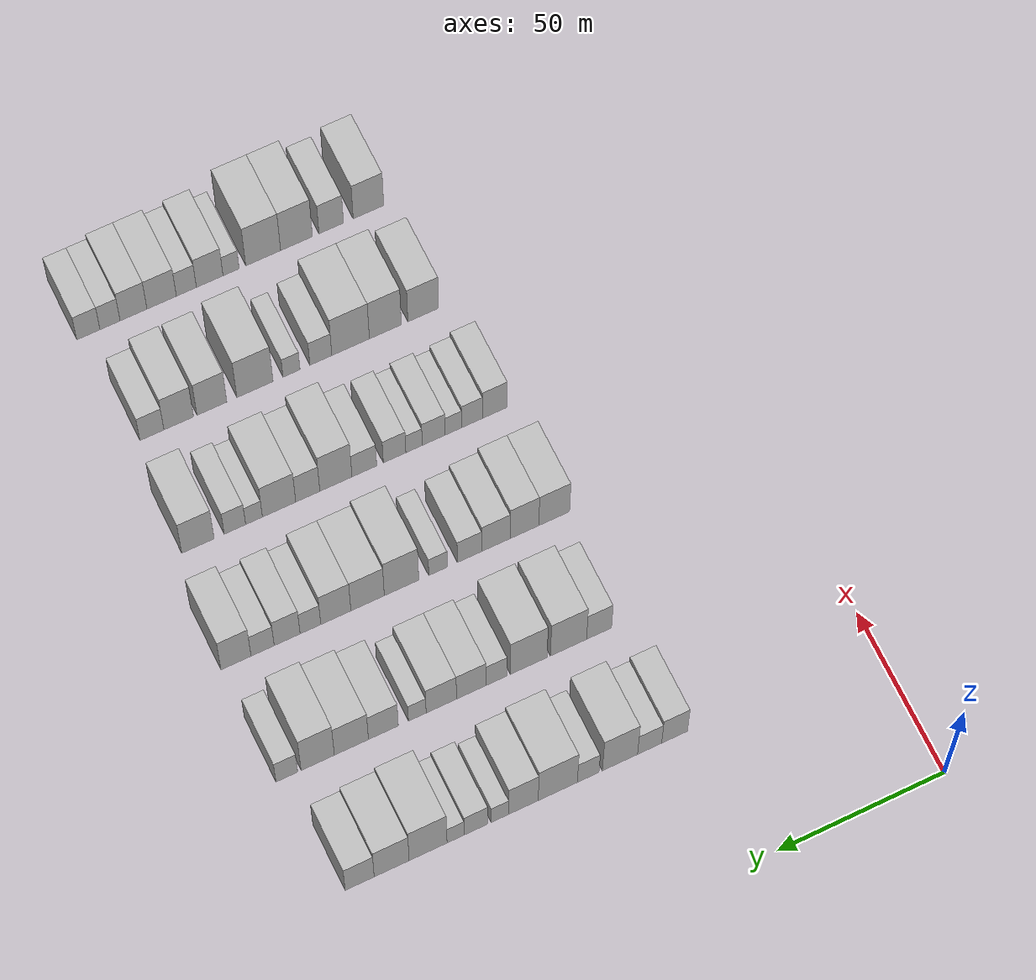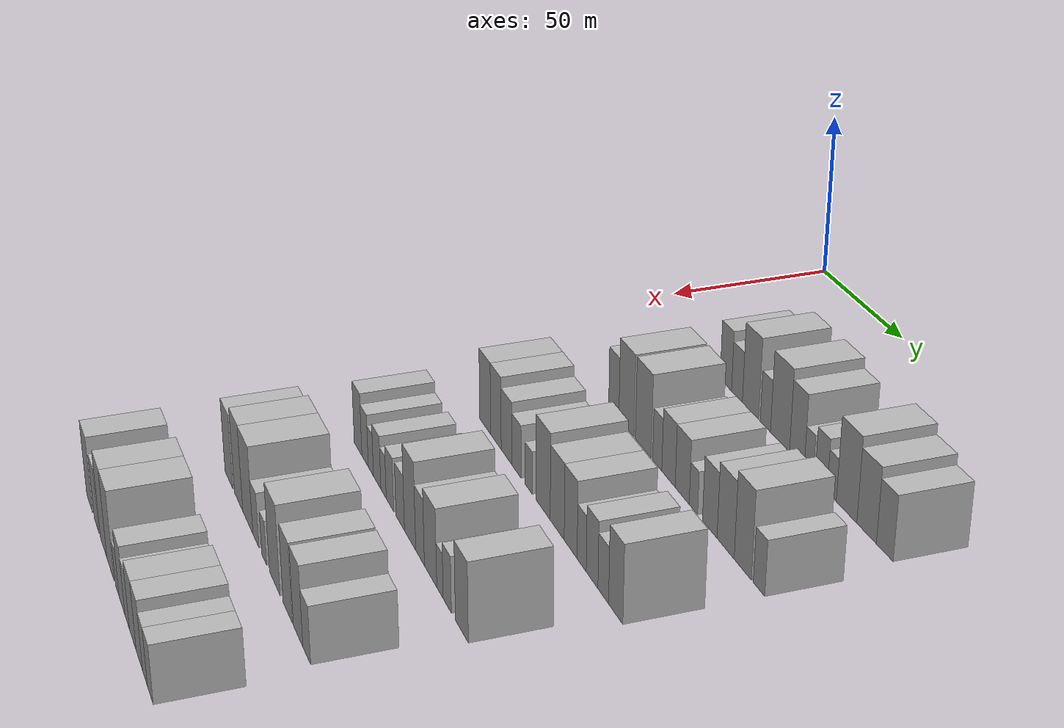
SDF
<sdf version="1.6">
 <world name="default">
  <model name="building_76">
   <static>1</static>
   <pose>50.0000 60.2573 0 0.000000 0.000000 0.000000</pose>
   <link name="link">
    <pose>0 0 9.00 0 0 0</pose>
    <collision name="collision"><geometry><box><size>20.0000 7.6862 18.0000</size></box></geometry></collision>
    <visual name="visual">
     <cast_shadows>0</cast_shadows>
     <geometry><box><size>20.0000 7.6862 18.0000</size></box></geometry>
     <material>
      <script>
       <uri>model://HANNAS_wall/materials/scripts</uri>
       <uri>model://HANNAS_wall/materials/textures</uri>
       <name>vrc/HANNAS_wall</name>
      </script>
     </material>
    </visual>
   </link>
  </model>
  <model name="building_77">
   <static>1</static>
   <pose>50.0000 67.6874 0 0.000000 0.000000 0.000000</pose>
   <link name="link">
    <pose>0 0 7.50 0 0 0</pose>
    <collision name="collision"><geometry><box><size>20.0000 7.1740 15.0000</size></box></geometry></collision>
    <visual name="visual">
     <cast_shadows>0</cast_shadows>
     <geometry><box><size>20.0000 7.1740 15.0000</size></box></geometry>
     <material>
      <script>
       <uri>model://HANNAS_wall/materials/scripts</uri>
       <uri>model://HANNAS_wall/materials/textures</uri>
       <name>vrc/HANNAS_wall</name>
      </script>
     </material>
    </visual>
   </link>
  </model>
  <model name="building_78">
   <static>1</static>
   <pose>50.0000 76.4942 0 0.000000 0.000000 0.000000</pose>
   <link name="link">
    <pose>0 0 12.00 0 0 0</pose>
    <collision name="collision"><geometry><box><size>20.0000 10.4397 24.0000</size></box></geometry></collision>
    <visual name="visual">
     <cast_shadows>0</cast_shadows>
     <geometry><box><size>20.0000 10.4397 24.0000</size></box></geometry>
     <material>
      <script>
       <uri>model://HANNAS_wall/materials/scripts</uri>
       <uri>model://HANNAS_wall/materials/textures</uri>
       <name>vrc/HANNAS_wall</name>
      </script>
     </material>
    </visual>
   </link>
  </model>
  <model name="building_79">
   <static>1</static>
   <pose>50.0000 85.9219 0 0.000000 0.000000 0.000000</pose>
   <link name="link">
    <pose>0 0 7.50 0 0 0</pose>
    <collision name="collision"><geometry><box><size>20.0000 6.4157 15.0000</size></box></geometry></collision>
    <visual name="visual">
     <cast_shadows>0</cast_shadows>
     <geometry><box><size>20.0000 6.4157 15.0000</size></box></geometry>
     <material>
      <script>
       <uri>model://HANNAS_wall/materials/scripts</uri>
       <uri>model://HANNAS_wall/materials/textures</uri>
       <name>vrc/HANNAS_wall</name>
      </script>
     </material>
    </visual>
   </link>
  </model>
  <model name="building_80">
   <static>1</static>
   <pose>50.0000 94.9156 0 0.000000 0.000000 0.000000</pose>
   <link name="link">
    <pose>0 0 12.00 0 0 0</pose>
    <collision name="collision"><geometry><box><size>20.0000 11.5717 24.0000</size></box></geometry></collision>
    <visual name="visual">
     <cast_shadows>0</cast_shadows>
     <geometry><box><size>20.0000 11.5717 24.0000</size></box></geometry>
     <material>
      <script>
       <uri>model://HANNAS_wall/materials/scripts</uri>
       <uri>model://HANNAS_wall/materials/textures</uri>
       <name>vrc/HANNAS_wall</name>
      </script>
     </material>
    </visual>
   </link>
  </model>
  <model name="building_81">
   <static>1</static>
   <pose>50.0000 105.0639 0 0.000000 0.000000 0.000000</pose>
   <link name="link">
    <pose>0 0 10.50 0 0 0</pose>
    <collision name="collision"><geometry><box><size>20.0000 8.7250 21.0000</size></box></geometry></collision>
    <visual name="visual">
     <cast_shadows>0</cast_shadows>
     <geometry><box><size>20.0000 8.7250 21.0000</size></box></geometry>
     <material>
      <script>
       <uri>model://HANNAS_wall/materials/scripts</uri>
       <uri>model://HANNAS_wall/materials/textures</uri>
       <name>vrc/HANNAS_wall</name>
      </script>
     </material>
    </visual>
   </link>
  </model>
  <model name="building_82">
   <static>1</static>
   <pose>50.0000 111.9966 0 0.000000 0.000000 0.000000</pose>
   <link name="link">
    <pose>0 0 6.00 0 0 0</pose>
    <collision name="collision"><geometry><box><size>20.0000 5.1404 12.0000</size></box></geometry></collision>
    <visual name="visual">
     <cast_shadows>0</cast_shadows>
     <geometry><box><size>20.0000 5.1404 12.0000</size></box></geometry>
     <material>
      <script>
       <uri>model://HANNAS_wall/materials/scripts</uri>
       <uri>model://HANNAS_wall/materials/textures</uri>
       <name>vrc/HANNAS_wall</name>
      </script>
     </material>
    </visual>
   </link>
  </model>
  <model name="building_83">
   <static>1</static>
   <pose>50.0000 119.0110 0 0.000000 0.000000 0.000000</pose>
   <link name="link">
    <pose>0 0 7.50 0 0 0</pose>
    <collision name="collision"><geometry><box><size>20.0000 6.8884 15.0000</size></box></geometry></collision>
    <visual name="visual">
     <cast_shadows>0</cast_shadows>
     <geometry><box><size>20.0000 6.8884 15.0000</size></box></geometry>
     <material>
      <script>
       <uri>model://HANNAS_wall/materials/scripts</uri>
       <uri>model://HANNAS_wall/materials/textures</uri>
       <name>vrc/HANNAS_wall</name>
      </script>
     </material>
    </visual>
   </link>
  </model>
  <model name="building_84">
   <static>1</static>
   <pose>50.0000 124.9751 0 0.000000 0.000000 0.000000</pose>
   <link name="link">
    <pose>0 0 6.00 0 0 0</pose>
    <collision name="collision"><geometry><box><size>20.0000 5.0398 12.0000</size></box></geometry></collision>
    <visual name="visual">
     <cast_shadows>0</cast_shadows>
     <geometry><box><size>20.0000 5.0398 12.0000</size></box></geometry>
     <material>
      <script>
       <uri>model://HANNAS_wall/materials/scripts</uri>
       <uri>model://HANNAS_wall/materials/textures</uri>
       <name>vrc/HANNAS_wall</name>
      </script>
     </material>
    </visual>
   </link>
  </model>
  <model name="building_85">
   <static>1</static>
   <pose>50.0000 133.0307 0 0.000000 0.000000 0.000000</pose>
   <link name="link">
    <pose>0 0 12.00 0 0 0</pose>
    <collision name="collision"><geometry><box><size>20.0000 11.0714 24.0000</size></box></geometry></collision>
    <visual name="visual">
     <cast_shadows>0</cast_shadows>
     <geometry><box><size>20.0000 11.0714 24.0000</size></box></geometry>
     <material>
      <script>
       <uri>model://HANNAS_wall/materials/scripts</uri>
       <uri>model://HANNAS_wall/materials/textures</uri>
       <name>vrc/HANNAS_wall</name>
      </script>
     </material>
    </visual>
   </link>
  </model>
  <model name="building_86">
   <static>1</static>
   <pose>50.0000 143.6648 0 0.000000 0.000000 0.000000</pose>
   <link name="link">
    <pose>0 0 10.50 0 0 0</pose>
    <collision name="collision"><geometry><box><size>20.0000 10.1969 21.0000</size></box></geometry></collision>
    <visual name="visual">
     <cast_shadows>0</cast_shadows>
     <geometry><box><size>20.0000 10.1969 21.0000</size></box></geometry>
     <material>
      <script>
       <uri>model://HANNAS_wall/materials/scripts</uri>
       <uri>model://HANNAS_wall/materials/textures</uri>
       <name>vrc/HANNAS_wall</name>
      </script>
     </material>
    </visual>
   </link>
  </model>
  <model name="building_87">
   <static>1</static>
   <pose>50.0000 152.9911 0 0.000000 0.000000 0.000000</pose>
   <link name="link">
    <pose>0 0 9.00 0 0 0</pose>
    <collision name="collision"><geometry><box><size>20.0000 8.4556 18.0000</size></box></geometry></collision>
    <visual name="visual">
     <cast_shadows>0</cast_shadows>
     <geometry><box><size>20.0000 8.4556 18.0000</size></box></geometry>
     <material>
      <script>
       <uri>model://HANNAS_wall/materials/scripts</uri>
       <uri>model://HANNAS_wall/materials/textures</uri>
       <name>vrc/HANNAS_wall</name>
      </script>
     </material>
    </visual>
   </link>
  </model>
  <model name="building_206">
   <static>1</static>
   <pose>85.0000 65.3222 0 0.000000 0.000000 0.000000</pose>
   <link name="link">
    <pose>0 0 9.00 0 0 0</pose>
    <collision name="collision"><geometry><box><size>20.0000 7.4960 18.0000</size></box></geometry></collision>
    <visual name="visual">
     <cast_shadows>0</cast_shadows>
     <geometry><box><size>20.0000 7.4960 18.0000</size></box></geometry>
     <material>
      <script>
       <uri>model://HANNAS_wall/materials/scripts</uri>
       <uri>model://HANNAS_wall/materials/textures</uri>
       <name>vrc/HANNAS_wall</name>
      </script>
     </material>
    </visual>
   </link>
  </model>
  <model name="building_207">
   <static>1</static>
   <pose>85.0000 74.4758 0 0.000000 0.000000 0.000000</pose>
   <link name="link">
    <pose>0 0 12.00 0 0 0</pose>
    <collision name="collision"><geometry><box><size>20.0000 10.8113 24.0000</size></box></geometry></collision>
    <visual name="visual">
     <cast_shadows>0</cast_shadows>
     <geometry><box><size>20.0000 10.8113 24.0000</size></box></geometry>
     <material>
      <script>
       <uri>model://HANNAS_wall/materials/scripts</uri>
       <uri>model://HANNAS_wall/materials/textures</uri>
       <name>vrc/HANNAS_wall</name>
      </script>
     </material>
    </visual>
   </link>
  </model>
  <model name="building_208">
   <static>1</static>
   <pose>85.0000 86.3676 0 0.000000 0.000000 0.000000</pose>
   <link name="link">
    <pose>0 0 12.00 0 0 0</pose>
    <collision name="collision"><geometry><box><size>20.0000 10.9721 24.0000</size></box></geometry></collision>
    <visual name="visual">
     <cast_shadows>0</cast_shadows>
     <geometry><box><size>20.0000 10.9721 24.0000</size></box></geometry>
     <material>
      <script>
       <uri>model://HANNAS_wall/materials/scripts</uri>
       <uri>model://HANNAS_wall/materials/textures</uri>
       <name>vrc/HANNAS_wall</name>
      </script>
     </material>
    </visual>
   </link>
  </model>
  <model name="building_209">
   <static>1</static>
   <pose>85.0000 95.9618 0 0.000000 0.000000 0.000000</pose>
   <link name="link">
    <pose>0 0 7.50 0 0 0</pose>
    <collision name="collision"><geometry><box><size>20.0000 6.2164 15.0000</size></box></geometry></collision>
    <visual name="visual">
     <cast_shadows>0</cast_shadows>
     <geometry><box><size>20.0000 6.2164 15.0000</size></box></geometry>
     <material>
      <script>
       <uri>model://HANNAS_wall/materials/scripts</uri>
       <uri>model://HANNAS_wall/materials/textures</uri>
       <name>vrc/HANNAS_wall</name>
      </script>
     </material>
    </visual>
   </link>
  </model>
  <model name="building_210">
   <static>1</static>
   <pose>85.0000 103.4649 0 0.000000 0.000000 0.000000</pose>
   <link name="link">
    <pose>0 0 9.00 0 0 0</pose>
    <collision name="collision"><geometry><box><size>20.0000 8.7898 18.0000</size></box></geometry></collision>
    <visual name="visual">
     <cast_shadows>0</cast_shadows>
     <geometry><box><size>20.0000 8.7898 18.0000</size></box></geometry>
     <material>
      <script>
       <uri>model://HANNAS_wall/materials/scripts</uri>
       <uri>model://HANNAS_wall/materials/textures</uri>
       <name>vrc/HANNAS_wall</name>
      </script>
     </material>
    </visual>
   </link>
  </model>
  <model name="building_211">
   <static>1</static>
   <pose>85.0000 112.3559 0 0.000000 0.000000 0.000000</pose>
   <link name="link">
    <pose>0 0 9.00 0 0 0</pose>
    <collision name="collision"><geometry><box><size>20.0000 8.9922 18.0000</size></box></geometry></collision>
    <visual name="visual">
     <cast_shadows>0</cast_shadows>
     <geometry><box><size>20.0000 8.9922 18.0000</size></box></geometry>
     <material>
      <script>
       <uri>model://HANNAS_wall/materials/scripts</uri>
       <uri>model://HANNAS_wall/materials/textures</uri>
       <name>vrc/HANNAS_wall</name>
      </script>
     </material>
    </visual>
   </link>
  </model>
  <model name="building_212">
   <static>1</static>
   <pose>85.0000 119.4692 0 0.000000 0.000000 0.000000</pose>
   <link name="link">
    <pose>0 0 6.00 0 0 0</pose>
    <collision name="collision"><geometry><box><size>20.0000 5.2343 12.0000</size></box></geometry></collision>
    <visual name="visual">
     <cast_shadows>0</cast_shadows>
     <geometry><box><size>20.0000 5.2343 12.0000</size></box></geometry>
     <material>
      <script>
       <uri>model://HANNAS_wall/materials/scripts</uri>
       <uri>model://HANNAS_wall/materials/textures</uri>
       <name>vrc/HANNAS_wall</name>
      </script>
     </material>
    </visual>
   </link>
  </model>
  <model name="building_213">
   <static>1</static>
   <pose>85.0000 129.4869 0 0.000000 0.000000 0.000000</pose>
   <link name="link">
    <pose>0 0 9.00 0 0 0</pose>
    <collision name="collision"><geometry><box><size>20.0000 8.8012 18.0000</size></box></geometry></collision>
    <visual name="visual">
     <cast_shadows>0</cast_shadows>
     <geometry><box><size>20.0000 8.8012 18.0000</size></box></geometry>
     <material>
      <script>
       <uri>model://HANNAS_wall/materials/scripts</uri>
       <uri>model://HANNAS_wall/materials/textures</uri>
       <name>vrc/HANNAS_wall</name>
      </script>
     </material>
    </visual>
   </link>
  </model>
  <model name="building_214">
   <static>1</static>
   <pose>85.0000 138.9031 0 0.000000 0.000000 0.000000</pose>
   <link name="link">
    <pose>0 0 10.50 0 0 0</pose>
    <collision name="collision"><geometry><box><size>20.0000 10.0312 21.0000</size></box></geometry></collision>
    <visual name="visual">
     <cast_shadows>0</cast_shadows>
     <geometry><box><size>20.0000 10.0312 21.0000</size></box></geometry>
     <material>
      <script>
       <uri>model://HANNAS_wall/materials/scripts</uri>
       <uri>model://HANNAS_wall/materials/textures</uri>
       <name>vrc/HANNAS_wall</name>
      </script>
     </material>
    </visual>
   </link>
  </model>
  <model name="building_215">
   <static>1</static>
   <pose>85.0000 148.8024 0 0.000000 0.000000 0.000000</pose>
   <link name="link">
    <pose>0 0 12.00 0 0 0</pose>
    <collision name="collision"><geometry><box><size>20.0000 9.7674 24.0000</size></box></geometry></collision>
    <visual name="visual">
     <cast_shadows>0</cast_shadows>
     <geometry><box><size>20.0000 9.7674 24.0000</size></box></geometry>
     <material>
      <script>
       <uri>model://HANNAS_wall/materials/scripts</uri>
       <uri>model://HANNAS_wall/materials/textures</uri>
       <name>vrc/HANNAS_wall</name>
      </script>
     </material>
    </visual>
   </link>
  </model>
  <model name="building_216">
   <static>1</static>
   <pose>85.0000 157.8591 0 0.000000 0.000000 0.000000</pose>
   <link name="link">
    <pose>0 0 7.50 0 0 0</pose>
    <collision name="collision"><geometry><box><size>20.0000 6.3460 15.0000</size></box></geometry></collision>
    <visual name="visual">
     <cast_shadows>0</cast_shadows>
     <geometry><box><size>20.0000 6.3460 15.0000</size></box></geometry>
     <material>
      <script>
       <uri>model://HANNAS_wall/materials/scripts</uri>
       <uri>model://HANNAS_wall/materials/textures</uri>
       <name>vrc/HANNAS_wall</name>
      </script>
     </material>
    </visual>
   </link>
  </model>
  <model name="building_316">
   <static>1</static>
   <pose>120.0000 61.5220 0 0.000000 0.000000 0.000000</pose>
   <link name="link">
    <pose>0 0 10.50 0 0 0</pose>
    <collision name="collision"><geometry><box><size>20.0000 9.3053 21.0000</size></box></geometry></collision>
    <visual name="visual">
     <cast_shadows>0</cast_shadows>
     <geometry><box><size>20.0000 9.3053 21.0000</size></box></geometry>
     <material>
      <script>
       <uri>model://HANNAS_wall/materials/scripts</uri>
       <uri>model://HANNAS_wall/materials/textures</uri>
       <name>vrc/HANNAS_wall</name>
      </script>
     </material>
    </visual>
   </link>
  </model>
  <model name="building_317">
   <static>1</static>
   <pose>120.0000 70.5314 0 0.000000 0.000000 0.000000</pose>
   <link name="link">
    <pose>0 0 10.50 0 0 0</pose>
    <collision name="collision"><geometry><box><size>20.0000 8.7135 21.0000</size></box></geometry></collision>
    <visual name="visual">
     <cast_shadows>0</cast_shadows>
     <geometry><box><size>20.0000 8.7135 21.0000</size></box></geometry>
     <material>
      <script>
       <uri>model://HANNAS_wall/materials/scripts</uri>
       <uri>model://HANNAS_wall/materials/textures</uri>
       <name>vrc/HANNAS_wall</name>
      </script>
     </material>
    </visual>
   </link>
  </model>
  <model name="building_318">
   <static>1</static>
   <pose>120.0000 79.1566 0 0.000000 0.000000 0.000000</pose>
   <link name="link">
    <pose>0 0 9.00 0 0 0</pose>
    <collision name="collision"><geometry><box><size>20.0000 8.5370 18.0000</size></box></geometry></collision>
    <visual name="visual">
     <cast_shadows>0</cast_shadows>
     <geometry><box><size>20.0000 8.5370 18.0000</size></box></geometry>
     <material>
      <script>
       <uri>model://HANNAS_wall/materials/scripts</uri>
       <uri>model://HANNAS_wall/materials/textures</uri>
       <name>vrc/HANNAS_wall</name>
      </script>
     </material>
    </visual>
   </link>
  </model>
  <model name="building_319">
   <static>1</static>
   <pose>120.0000 87.0785 0 0.000000 0.000000 0.000000</pose>
   <link name="link">
    <pose>0 0 7.50 0 0 0</pose>
    <collision name="collision"><geometry><box><size>20.0000 7.3066 15.0000</size></box></geometry></collision>
    <visual name="visual">
     <cast_shadows>0</cast_shadows>
     <geometry><box><size>20.0000 7.3066 15.0000</size></box></geometry>
     <material>
      <script>
       <uri>model://HANNAS_wall/materials/scripts</uri>
       <uri>model://HANNAS_wall/materials/textures</uri>
       <name>vrc/HANNAS_wall</name>
      </script>
     </material>
    </visual>
   </link>
  </model>
  <model name="building_320">
   <static>1</static>
   <pose>120.0000 96.5215 0 0.000000 0.000000 0.000000</pose>
   <link name="link">
    <pose>0 0 6.00 0 0 0</pose>
    <collision name="collision"><geometry><box><size>20.0000 5.5794 12.0000</size></box></geometry></collision>
    <visual name="visual">
     <cast_shadows>0</cast_shadows>
     <geometry><box><size>20.0000 5.5794 12.0000</size></box></geometry>
     <material>
      <script>
       <uri>model://HANNAS_wall/materials/scripts</uri>
       <uri>model://HANNAS_wall/materials/textures</uri>
       <name>vrc/HANNAS_wall</name>
      </script>
     </material>
    </visual>
   </link>
  </model>
  <model name="building_321">
   <static>1</static>
   <pose>120.0000 107.4591 0 0.000000 0.000000 0.000000</pose>
   <link name="link">
    <pose>0 0 12.00 0 0 0</pose>
    <collision name="collision"><geometry><box><size>20.0000 10.2958 24.0000</size></box></geometry></collision>
    <visual name="visual">
     <cast_shadows>0</cast_shadows>
     <geometry><box><size>20.0000 10.2958 24.0000</size></box></geometry>
     <material>
      <script>
       <uri>model://HANNAS_wall/materials/scripts</uri>
       <uri>model://HANNAS_wall/materials/textures</uri>
       <name>vrc/HANNAS_wall</name>
      </script>
     </material>
    </visual>
   </link>
  </model>
  <model name="building_322">
   <static>1</static>
   <pose>120.0000 117.5944 0 0.000000 0.000000 0.000000</pose>
   <link name="link">
    <pose>0 0 10.50 0 0 0</pose>
    <collision name="collision"><geometry><box><size>20.0000 9.9748 21.0000</size></box></geometry></collision>
    <visual name="visual">
     <cast_shadows>0</cast_shadows>
     <geometry><box><size>20.0000 9.9748 21.0000</size></box></geometry>
     <material>
      <script>
       <uri>model://HANNAS_wall/materials/scripts</uri>
       <uri>model://HANNAS_wall/materials/textures</uri>
       <name>vrc/HANNAS_wall</name>
      </script>
     </material>
    </visual>
   </link>
  </model>
  <model name="building_323">
   <static>1</static>
   <pose>120.0000 127.0570 0 0.000000 0.000000 0.000000</pose>
   <link name="link">
    <pose>0 0 10.50 0 0 0</pose>
    <collision name="collision"><geometry><box><size>20.0000 8.9504 21.0000</size></box></geometry></collision>
    <visual name="visual">
     <cast_shadows>0</cast_shadows>
     <geometry><box><size>20.0000 8.9504 21.0000</size></box></geometry>
     <material>
      <script>
       <uri>model://HANNAS_wall/materials/scripts</uri>
       <uri>model://HANNAS_wall/materials/textures</uri>
       <name>vrc/HANNAS_wall</name>
      </script>
     </material>
    </visual>
   </link>
  </model>
  <model name="building_324">
   <static>1</static>
   <pose>120.0000 134.6005 0 0.000000 0.000000 0.000000</pose>
   <link name="link">
    <pose>0 0 7.50 0 0 0</pose>
    <collision name="collision"><geometry><box><size>20.0000 6.1366 15.0000</size></box></geometry></collision>
    <visual name="visual">
     <cast_shadows>0</cast_shadows>
     <geometry><box><size>20.0000 6.1366 15.0000</size></box></geometry>
     <material>
      <script>
       <uri>model://HANNAS_wall/materials/scripts</uri>
       <uri>model://HANNAS_wall/materials/textures</uri>
       <name>vrc/HANNAS_wall</name>
      </script>
     </material>
    </visual>
   </link>
  </model>
  <model name="building_325">
   <static>1</static>
   <pose>120.0000 141.5048 0 0.000000 0.000000 0.000000</pose>
   <link name="link">
    <pose>0 0 9.00 0 0 0</pose>
    <collision name="collision"><geometry><box><size>20.0000 7.6721 18.0000</size></box></geometry></collision>
    <visual name="visual">
     <cast_shadows>0</cast_shadows>
     <geometry><box><size>20.0000 7.6721 18.0000</size></box></geometry>
     <material>
      <script>
       <uri>model://HANNAS_wall/materials/scripts</uri>
       <uri>model://HANNAS_wall/materials/textures</uri>
       <name>vrc/HANNAS_wall</name>
      </script>
     </material>
    </visual>
   </link>
  </model>
  <model name="building_326">
   <static>1</static>
   <pose>120.0000 148.7593 0 0.000000 0.000000 0.000000</pose>
   <link name="link">
    <pose>0 0 7.50 0 0 0</pose>
    <collision name="collision"><geometry><box><size>20.0000 6.8370 15.0000</size></box></geometry></collision>
    <visual name="visual">
     <cast_shadows>0</cast_shadows>
     <geometry><box><size>20.0000 6.8370 15.0000</size></box></geometry>
     <material>
      <script>
       <uri>model://HANNAS_wall/materials/scripts</uri>
       <uri>model://HANNAS_wall/materials/textures</uri>
       <name>vrc/HANNAS_wall</name>
      </script>
     </material>
    </visual>
   </link>
  </model>
  <model name="building_327">
   <static>1</static>
   <pose>120.0000 156.6230 0 0.000000 0.000000 0.000000</pose>
   <link name="link">
    <pose>0 0 10.50 0 0 0</pose>
    <collision name="collision"><geometry><box><size>20.0000 8.8904 21.0000</size></box></geometry></collision>
    <visual name="visual">
     <cast_shadows>0</cast_shadows>
     <geometry><box><size>20.0000 8.8904 21.0000</size></box></geometry>
     <material>
      <script>
       <uri>model://HANNAS_wall/materials/scripts</uri>
       <uri>model://HANNAS_wall/materials/textures</uri>
       <name>vrc/HANNAS_wall</name>
      </script>
     </material>
    </visual>
   </link>
  </model>
  <model name="building_438">
   <static>1</static>
   <pose>155.0000 62.4980 0 0.000000 0.000000 0.000000</pose>
   <link name="link">
    <pose>0 0 9.00 0 0 0</pose>
    <collision name="collision"><geometry><box><size>20.0000 7.5358 18.0000</size></box></geometry></collision>
    <visual name="visual">
     <cast_shadows>0</cast_shadows>
     <geometry><box><size>20.0000 7.5358 18.0000</size></box></geometry>
     <material>
      <script>
       <uri>model://HANNAS_wall/materials/scripts</uri>
       <uri>model://HANNAS_wall/materials/textures</uri>
       <name>vrc/HANNAS_wall</name>
      </script>
     </material>
    </visual>
   </link>
  </model>
  <model name="building_439">
   <static>1</static>
   <pose>155.0000 69.4305 0 0.000000 0.000000 0.000000</pose>
   <link name="link">
    <pose>0 0 7.50 0 0 0</pose>
    <collision name="collision"><geometry><box><size>20.0000 6.3293 15.0000</size></box></geometry></collision>
    <visual name="visual">
     <cast_shadows>0</cast_shadows>
     <geometry><box><size>20.0000 6.3293 15.0000</size></box></geometry>
     <material>
      <script>
       <uri>model://HANNAS_wall/materials/scripts</uri>
       <uri>model://HANNAS_wall/materials/textures</uri>
       <name>vrc/HANNAS_wall</name>
      </script>
     </material>
    </visual>
   </link>
  </model>
  <model name="building_440">
   <static>1</static>
   <pose>155.0000 75.0671 0 0.000000 0.000000 0.000000</pose>
   <link name="link">
    <pose>0 0 6.00 0 0 0</pose>
    <collision name="collision"><geometry><box><size>20.0000 4.9439 12.0000</size></box></geometry></collision>
    <visual name="visual">
     <cast_shadows>0</cast_shadows>
     <geometry><box><size>20.0000 4.9439 12.0000</size></box></geometry>
     <material>
      <script>
       <uri>model://HANNAS_wall/materials/scripts</uri>
       <uri>model://HANNAS_wall/materials/textures</uri>
       <name>vrc/HANNAS_wall</name>
      </script>
     </material>
    </visual>
   </link>
  </model>
  <model name="building_441">
   <static>1</static>
   <pose>155.0000 81.0252 0 0.000000 0.000000 0.000000</pose>
   <link name="link">
    <pose>0 0 7.50 0 0 0</pose>
    <collision name="collision"><geometry><box><size>20.0000 6.9722 15.0000</size></box></geometry></collision>
    <visual name="visual">
     <cast_shadows>0</cast_shadows>
     <geometry><box><size>20.0000 6.9722 15.0000</size></box></geometry>
     <material>
      <script>
       <uri>model://HANNAS_wall/materials/scripts</uri>
       <uri>model://HANNAS_wall/materials/textures</uri>
       <name>vrc/HANNAS_wall</name>
      </script>
     </material>
    </visual>
   </link>
  </model>
  <model name="building_442">
   <static>1</static>
   <pose>155.0000 86.9975 0 0.000000 0.000000 0.000000</pose>
   <link name="link">
    <pose>0 0 6.00 0 0 0</pose>
    <collision name="collision"><geometry><box><size>20.0000 4.9723 12.0000</size></box></geometry></collision>
    <visual name="visual">
     <cast_shadows>0</cast_shadows>
     <geometry><box><size>20.0000 4.9723 12.0000</size></box></geometry>
     <material>
      <script>
       <uri>model://HANNAS_wall/materials/scripts</uri>
       <uri>model://HANNAS_wall/materials/textures</uri>
       <name>vrc/HANNAS_wall</name>
      </script>
     </material>
    </visual>
   </link>
  </model>
  <model name="building_443">
   <static>1</static>
   <pose>155.0000 92.8939 0 0.000000 0.000000 0.000000</pose>
   <link name="link">
    <pose>0 0 7.50 0 0 0</pose>
    <collision name="collision"><geometry><box><size>20.0000 6.8205 15.0000</size></box></geometry></collision>
    <visual name="visual">
     <cast_shadows>0</cast_shadows>
     <geometry><box><size>20.0000 6.8205 15.0000</size></box></geometry>
     <material>
      <script>
       <uri>model://HANNAS_wall/materials/scripts</uri>
       <uri>model://HANNAS_wall/materials/textures</uri>
       <name>vrc/HANNAS_wall</name>
      </script>
     </material>
    </visual>
   </link>
  </model>
  <model name="building_444">
   <static>1</static>
   <pose>155.0000 102.0336 0 0.000000 0.000000 0.000000</pose>
   <link name="link">
    <pose>0 0 7.50 0 0 0</pose>
    <collision name="collision"><geometry><box><size>20.0000 7.4588 15.0000</size></box></geometry></collision>
    <visual name="visual">
     <cast_shadows>0</cast_shadows>
     <geometry><box><size>20.0000 7.4588 15.0000</size></box></geometry>
     <material>
      <script>
       <uri>model://HANNAS_wall/materials/scripts</uri>
       <uri>model://HANNAS_wall/materials/textures</uri>
       <name>vrc/HANNAS_wall</name>
      </script>
     </material>
    </visual>
   </link>
  </model>
  <model name="building_445">
   <static>1</static>
   <pose>155.0000 110.5989 0 0.000000 0.000000 0.000000</pose>
   <link name="link">
    <pose>0 0 12.00 0 0 0</pose>
    <collision name="collision"><geometry><box><size>20.0000 9.6719 24.0000</size></box></geometry></collision>
    <visual name="visual">
     <cast_shadows>0</cast_shadows>
     <geometry><box><size>20.0000 9.6719 24.0000</size></box></geometry>
     <material>
      <script>
       <uri>model://HANNAS_wall/materials/scripts</uri>
       <uri>model://HANNAS_wall/materials/textures</uri>
       <name>vrc/HANNAS_wall</name>
      </script>
     </material>
    </visual>
   </link>
  </model>
  <model name="building_446">
   <static>1</static>
   <pose>155.0000 119.0554 0 0.000000 0.000000 0.000000</pose>
   <link name="link">
    <pose>0 0 9.00 0 0 0</pose>
    <collision name="collision"><geometry><box><size>20.0000 7.2413 18.0000</size></box></geometry></collision>
    <visual name="visual">
     <cast_shadows>0</cast_shadows>
     <geometry><box><size>20.0000 7.2413 18.0000</size></box></geometry>
     <material>
      <script>
       <uri>model://HANNAS_wall/materials/scripts</uri>
       <uri>model://HANNAS_wall/materials/textures</uri>
       <name>vrc/HANNAS_wall</name>
      </script>
     </material>
    </visual>
   </link>
  </model>
  <model name="building_447">
   <static>1</static>
   <pose>155.0000 127.6667 0 0.000000 0.000000 0.000000</pose>
   <link name="link">
    <pose>0 0 10.50 0 0 0</pose>
    <collision name="collision"><geometry><box><size>20.0000 9.9813 21.0000</size></box></geometry></collision>
    <visual name="visual">
     <cast_shadows>0</cast_shadows>
     <geometry><box><size>20.0000 9.9813 21.0000</size></box></geometry>
     <material>
      <script>
       <uri>model://HANNAS_wall/materials/scripts</uri>
       <uri>model://HANNAS_wall/materials/textures</uri>
       <name>vrc/HANNAS_wall</name>
      </script>
     </material>
    </visual>
   </link>
  </model>
  <model name="building_448">
   <static>1</static>
   <pose>155.0000 135.1681 0 0.000000 0.000000 0.000000</pose>
   <link name="link">
    <pose>0 0 6.00 0 0 0</pose>
    <collision name="collision"><geometry><box><size>20.0000 5.0215 12.0000</size></box></geometry></collision>
    <visual name="visual">
     <cast_shadows>0</cast_shadows>
     <geometry><box><size>20.0000 5.0215 12.0000</size></box></geometry>
     <material>
      <script>
       <uri>model://HANNAS_wall/materials/scripts</uri>
       <uri>model://HANNAS_wall/materials/textures</uri>
       <name>vrc/HANNAS_wall</name>
      </script>
     </material>
    </visual>
   </link>
  </model>
  <model name="building_449">
   <static>1</static>
   <pose>155.0000 140.8748 0 0.000000 0.000000 0.000000</pose>
   <link name="link">
    <pose>0 0 7.50 0 0 0</pose>
    <collision name="collision"><geometry><box><size>20.0000 6.3917 15.0000</size></box></geometry></collision>
    <visual name="visual">
     <cast_shadows>0</cast_shadows>
     <geometry><box><size>20.0000 6.3917 15.0000</size></box></geometry>
     <material>
      <script>
       <uri>model://HANNAS_wall/materials/scripts</uri>
       <uri>model://HANNAS_wall/materials/textures</uri>
       <name>vrc/HANNAS_wall</name>
      </script>
     </material>
    </visual>
   </link>
  </model>
  <model name="building_450">
   <static>1</static>
   <pose>155.0000 151.8946 0 0.000000 0.000000 0.000000</pose>
   <link name="link">
    <pose>0 0 10.50 0 0 0</pose>
    <collision name="collision"><geometry><box><size>20.0000 9.6480 21.0000</size></box></geometry></collision>
    <visual name="visual">
     <cast_shadows>0</cast_shadows>
     <geometry><box><size>20.0000 9.6480 21.0000</size></box></geometry>
     <material>
      <script>
       <uri>model://HANNAS_wall/materials/scripts</uri>
       <uri>model://HANNAS_wall/materials/textures</uri>
       <name>vrc/HANNAS_wall</name>
      </script>
     </material>
    </visual>
   </link>
  </model>
  <model name="building_557">
   <static>1</static>
   <pose>190.0000 67.4892 0 0.000000 0.000000 0.000000</pose>
   <link name="link">
    <pose>0 0 10.50 0 0 0</pose>
    <collision name="collision"><geometry><box><size>20.0000 9.4135 21.0000</size></box></geometry></collision>
    <visual name="visual">
     <cast_shadows>0</cast_shadows>
     <geometry><box><size>20.0000 9.4135 21.0000</size></box></geometry>
     <material>
      <script>
       <uri>model://HANNAS_wall/materials/scripts</uri>
       <uri>model://HANNAS_wall/materials/textures</uri>
       <name>vrc/HANNAS_wall</name>
      </script>
     </material>
    </visual>
   </link>
  </model>
  <model name="building_558">
   <static>1</static>
   <pose>190.0000 79.0779 0 0.000000 0.000000 0.000000</pose>
   <link name="link">
    <pose>0 0 12.00 0 0 0</pose>
    <collision name="collision"><geometry><box><size>20.0000 9.7639 24.0000</size></box></geometry></collision>
    <visual name="visual">
     <cast_shadows>0</cast_shadows>
     <geometry><box><size>20.0000 9.7639 24.0000</size></box></geometry>
     <material>
      <script>
       <uri>model://HANNAS_wall/materials/scripts</uri>
       <uri>model://HANNAS_wall/materials/textures</uri>
       <name>vrc/HANNAS_wall</name>
      </script>
     </material>
    </visual>
   </link>
  </model>
  <model name="building_559">
   <static>1</static>
   <pose>190.0000 89.6834 0 0.000000 0.000000 0.000000</pose>
   <link name="link">
    <pose>0 0 12.00 0 0 0</pose>
    <collision name="collision"><geometry><box><size>20.0000 11.4470 24.0000</size></box></geometry></collision>
    <visual name="visual">
     <cast_shadows>0</cast_shadows>
     <geometry><box><size>20.0000 11.4470 24.0000</size></box></geometry>
     <material>
      <script>
       <uri>model://HANNAS_wall/materials/scripts</uri>
       <uri>model://HANNAS_wall/materials/textures</uri>
       <name>vrc/HANNAS_wall</name>
      </script>
     </material>
    </visual>
   </link>
  </model>
  <model name="building_560">
   <static>1</static>
   <pose>190.0000 98.7494 0 0.000000 0.000000 0.000000</pose>
   <link name="link">
    <pose>0 0 7.50 0 0 0</pose>
    <collision name="collision"><geometry><box><size>20.0000 6.6850 15.0000</size></box></geometry></collision>
    <visual name="visual">
     <cast_shadows>0</cast_shadows>
     <geometry><box><size>20.0000 6.6850 15.0000</size></box></geometry>
     <material>
      <script>
       <uri>model://HANNAS_wall/materials/scripts</uri>
       <uri>model://HANNAS_wall/materials/textures</uri>
       <name>vrc/HANNAS_wall</name>
      </script>
     </material>
    </visual>
   </link>
  </model>
  <model name="building_561">
   <static>1</static>
   <pose>190.0000 107.6739 0 0.000000 0.000000 0.000000</pose>
   <link name="link">
    <pose>0 0 6.00 0 0 0</pose>
    <collision name="collision"><geometry><box><size>20.0000 5.1639 12.0000</size></box></geometry></collision>
    <visual name="visual">
     <cast_shadows>0</cast_shadows>
     <geometry><box><size>20.0000 5.1639 12.0000</size></box></geometry>
     <material>
      <script>
       <uri>model://HANNAS_wall/materials/scripts</uri>
       <uri>model://HANNAS_wall/materials/textures</uri>
       <name>vrc/HANNAS_wall</name>
      </script>
     </material>
    </visual>
   </link>
  </model>
  <model name="building_562">
   <static>1</static>
   <pose>190.0000 118.7482 0 0.000000 0.000000 0.000000</pose>
   <link name="link">
    <pose>0 0 12.00 0 0 0</pose>
    <collision name="collision"><geometry><box><size>20.0000 10.9848 24.0000</size></box></geometry></collision>
    <visual name="visual">
     <cast_shadows>0</cast_shadows>
     <geometry><box><size>20.0000 10.9848 24.0000</size></box></geometry>
     <material>
      <script>
       <uri>model://HANNAS_wall/materials/scripts</uri>
       <uri>model://HANNAS_wall/materials/textures</uri>
       <name>vrc/HANNAS_wall</name>
      </script>
     </material>
    </visual>
   </link>
  </model>
  <model name="building_563">
   <static>1</static>
   <pose>190.0000 131.7584 0 0.000000 0.000000 0.000000</pose>
   <link name="link">
    <pose>0 0 10.50 0 0 0</pose>
    <collision name="collision"><geometry><box><size>20.0000 9.0355 21.0000</size></box></geometry></collision>
    <visual name="visual">
     <cast_shadows>0</cast_shadows>
     <geometry><box><size>20.0000 9.0355 21.0000</size></box></geometry>
     <material>
      <script>
       <uri>model://HANNAS_wall/materials/scripts</uri>
       <uri>model://HANNAS_wall/materials/textures</uri>
       <name>vrc/HANNAS_wall</name>
      </script>
     </material>
    </visual>
   </link>
  </model>
  <model name="building_564">
   <static>1</static>
   <pose>190.0000 141.7343 0 0.000000 0.000000 0.000000</pose>
   <link name="link">
    <pose>0 0 10.50 0 0 0</pose>
    <collision name="collision"><geometry><box><size>20.0000 8.9164 21.0000</size></box></geometry></collision>
    <visual name="visual">
     <cast_shadows>0</cast_shadows>
     <geometry><box><size>20.0000 8.9164 21.0000</size></box></geometry>
     <material>
      <script>
       <uri>model://HANNAS_wall/materials/scripts</uri>
       <uri>model://HANNAS_wall/materials/textures</uri>
       <name>vrc/HANNAS_wall</name>
      </script>
     </material>
    </visual>
   </link>
  </model>
  <model name="building_565">
   <static>1</static>
   <pose>190.0000 149.7993 0 0.000000 0.000000 0.000000</pose>
   <link name="link">
    <pose>0 0 7.50 0 0 0</pose>
    <collision name="collision"><geometry><box><size>20.0000 7.2135 15.0000</size></box></geometry></collision>
    <visual name="visual">
     <cast_shadows>0</cast_shadows>
     <geometry><box><size>20.0000 7.2135 15.0000</size></box></geometry>
     <material>
      <script>
       <uri>model://HANNAS_wall/materials/scripts</uri>
       <uri>model://HANNAS_wall/materials/textures</uri>
       <name>vrc/HANNAS_wall</name>
      </script>
     </material>
    </visual>
   </link>
  </model>
  <model name="building_692">
   <static>1</static>
   <pose>225.0000 67.7000 0 0.000000 0.000000 0.000000</pose>
   <link name="link">
    <pose>0 0 10.50 0 0 0</pose>
    <collision name="collision"><geometry><box><size>20.0000 9.4122 21.0000</size></box></geometry></collision>
    <visual name="visual">
     <cast_shadows>0</cast_shadows>
     <geometry><box><size>20.0000 9.4122 21.0000</size></box></geometry>
     <material>
      <script>
       <uri>model://HANNAS_wall/materials/scripts</uri>
       <uri>model://HANNAS_wall/materials/textures</uri>
       <name>vrc/HANNAS_wall</name>
      </script>
     </material>
    </visual>
   </link>
  </model>
  <model name="building_693">
   <static>1</static>
   <pose>225.0000 79.1819 0 0.000000 0.000000 0.000000</pose>
   <link name="link">
    <pose>0 0 9.00 0 0 0</pose>
    <collision name="collision"><geometry><box><size>20.0000 7.5514 18.0000</size></box></geometry></collision>
    <visual name="visual">
     <cast_shadows>0</cast_shadows>
     <geometry><box><size>20.0000 7.5514 18.0000</size></box></geometry>
     <material>
      <script>
       <uri>model://HANNAS_wall/materials/scripts</uri>
       <uri>model://HANNAS_wall/materials/textures</uri>
       <name>vrc/HANNAS_wall</name>
      </script>
     </material>
    </visual>
   </link>
  </model>
  <model name="building_694">
   <static>1</static>
   <pose>225.0000 89.8480 0 0.000000 0.000000 0.000000</pose>
   <link name="link">
    <pose>0 0 12.00 0 0 0</pose>
    <collision name="collision"><geometry><box><size>20.0000 9.7808 24.0000</size></box></geometry></collision>
    <visual name="visual">
     <cast_shadows>0</cast_shadows>
     <geometry><box><size>20.0000 9.7808 24.0000</size></box></geometry>
     <material>
      <script>
       <uri>model://HANNAS_wall/materials/scripts</uri>
       <uri>model://HANNAS_wall/materials/textures</uri>
       <name>vrc/HANNAS_wall</name>
      </script>
     </material>
    </visual>
   </link>
  </model>
  <model name="building_695">
   <static>1</static>
   <pose>225.0000 100.0887 0 0.000000 0.000000 0.000000</pose>
   <link name="link">
    <pose>0 0 12.00 0 0 0</pose>
    <collision name="collision"><geometry><box><size>20.0000 10.7007 24.0000</size></box></geometry></collision>
    <visual name="visual">
     <cast_shadows>0</cast_shadows>
     <geometry><box><size>20.0000 10.7007 24.0000</size></box></geometry>
     <material>
      <script>
       <uri>model://HANNAS_wall/materials/scripts</uri>
       <uri>model://HANNAS_wall/materials/textures</uri>
       <name>vrc/HANNAS_wall</name>
      </script>
     </material>
    </visual>
   </link>
  </model>
  <model name="building_696">
   <static>1</static>
   <pose>225.0000 109.9008 0 0.000000 0.000000 0.000000</pose>
   <link name="link">
    <pose>0 0 6.00 0 0 0</pose>
    <collision name="collision"><geometry><box><size>20.0000 4.9234 12.0000</size></box></geometry></collision>
    <visual name="visual">
     <cast_shadows>0</cast_shadows>
     <geometry><box><size>20.0000 4.9234 12.0000</size></box></geometry>
     <material>
      <script>
       <uri>model://HANNAS_wall/materials/scripts</uri>
       <uri>model://HANNAS_wall/materials/textures</uri>
       <name>vrc/HANNAS_wall</name>
      </script>
     </material>
    </visual>
   </link>
  </model>
  <model name="building_697">
   <static>1</static>
   <pose>225.0000 116.4302 0 0.000000 0.000000 0.000000</pose>
   <link name="link">
    <pose>0 0 9.00 0 0 0</pose>
    <collision name="collision"><geometry><box><size>20.0000 8.1354 18.0000</size></box></geometry></collision>
    <visual name="visual">
     <cast_shadows>0</cast_shadows>
     <geometry><box><size>20.0000 8.1354 18.0000</size></box></geometry>
     <material>
      <script>
       <uri>model://HANNAS_wall/materials/scripts</uri>
       <uri>model://HANNAS_wall/materials/textures</uri>
       <name>vrc/HANNAS_wall</name>
      </script>
     </material>
    </visual>
   </link>
  </model>
  <model name="building_698">
   <static>1</static>
   <pose>225.0000 123.5528 0 0.000000 0.000000 0.000000</pose>
   <link name="link">
    <pose>0 0 7.50 0 0 0</pose>
    <collision name="collision"><geometry><box><size>20.0000 6.1098 15.0000</size></box></geometry></collision>
    <visual name="visual">
     <cast_shadows>0</cast_shadows>
     <geometry><box><size>20.0000 6.1098 15.0000</size></box></geometry>
     <material>
      <script>
       <uri>model://HANNAS_wall/materials/scripts</uri>
       <uri>model://HANNAS_wall/materials/textures</uri>
       <name>vrc/HANNAS_wall</name>
      </script>
     </material>
    </visual>
   </link>
  </model>
  <model name="building_699">
   <static>1</static>
   <pose>225.0000 131.0640 0 0.000000 0.000000 0.000000</pose>
   <link name="link">
    <pose>0 0 9.00 0 0 0</pose>
    <collision name="collision"><geometry><box><size>20.0000 8.9125 18.0000</size></box></geometry></collision>
    <visual name="visual">
     <cast_shadows>0</cast_shadows>
     <geometry><box><size>20.0000 8.9125 18.0000</size></box></geometry>
     <material>
      <script>
       <uri>model://HANNAS_wall/materials/scripts</uri>
       <uri>model://HANNAS_wall/materials/textures</uri>
       <name>vrc/HANNAS_wall</name>
      </script>
     </material>
    </visual>
   </link>
  </model>
  <model name="building_700">
   <static>1</static>
   <pose>225.0000 139.5903 0 0.000000 0.000000 0.000000</pose>
   <link name="link">
    <pose>0 0 9.00 0 0 0</pose>
    <collision name="collision"><geometry><box><size>20.0000 8.1401 18.0000</size></box></geometry></collision>
    <visual name="visual">
     <cast_shadows>0</cast_shadows>
     <geometry><box><size>20.0000 8.1401 18.0000</size></box></geometry>
     <material>
      <script>
       <uri>model://HANNAS_wall/materials/scripts</uri>
       <uri>model://HANNAS_wall/materials/textures</uri>
       <name>vrc/HANNAS_wall</name>
      </script>
     </material>
    </visual>
   </link>
  </model>
  <model name="building_701">
   <static>1</static>
   <pose>225.0000 146.7145 0 0.000000 0.000000 0.000000</pose>
   <link name="link">
    <pose>0 0 7.50 0 0 0</pose>
    <collision name="collision"><geometry><box><size>20.0000 6.1084 15.0000</size></box></geometry></collision>
    <visual name="visual">
     <cast_shadows>0</cast_shadows>
     <geometry><box><size>20.0000 6.1084 15.0000</size></box></geometry>
     <material>
      <script>
       <uri>model://HANNAS_wall/materials/scripts</uri>
       <uri>model://HANNAS_wall/materials/textures</uri>
       <name>vrc/HANNAS_wall</name>
      </script>
     </material>
    </visual>
   </link>
  </model>
  <model name="building_702">
   <static>1</static>
   <pose>225.0000 153.2737 0 0.000000 0.000000 0.000000</pose>
   <link name="link">
    <pose>0 0 7.50 0 0 0</pose>
    <collision name="collision"><geometry><box><size>20.0000 7.0099 15.0000</size></box></geometry></collision>
    <visual name="visual">
     <cast_shadows>0</cast_shadows>
     <geometry><box><size>20.0000 7.0099 15.0000</size></box></geometry>
     <material>
      <script>
       <uri>model://HANNAS_wall/materials/scripts</uri>
       <uri>model://HANNAS_wall/materials/textures</uri>
       <name>vrc/HANNAS_wall</name>
      </script>
     </material>
    </visual>
   </link>
  </model>
 </world>
</sdf>
